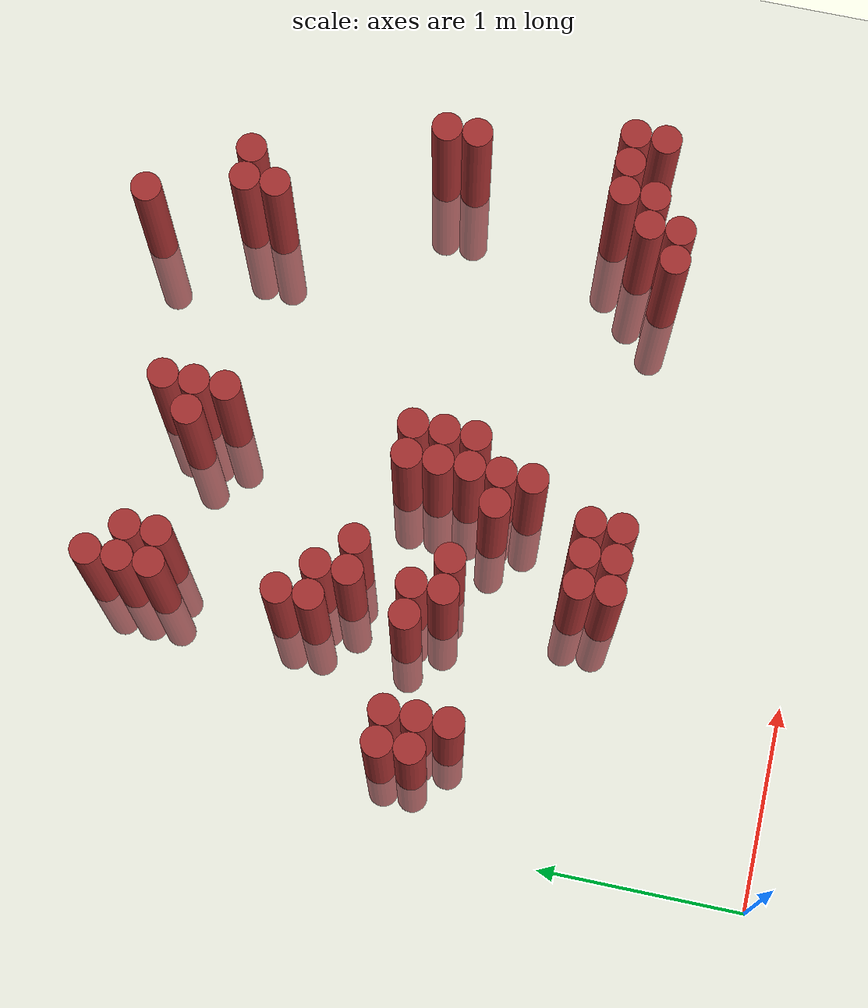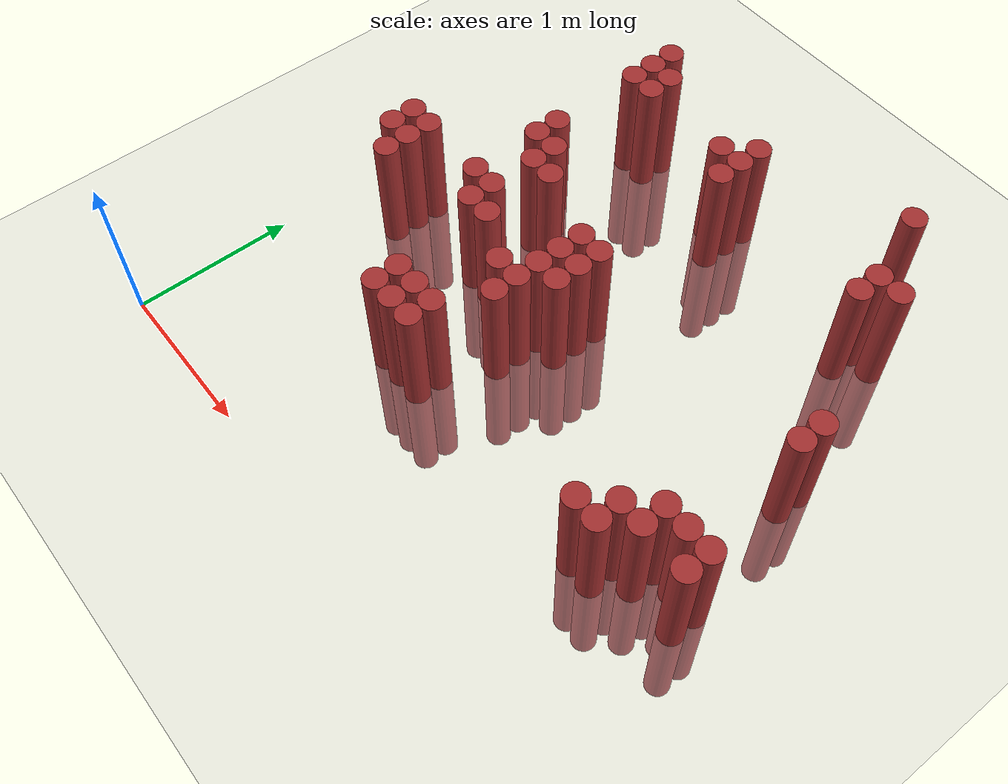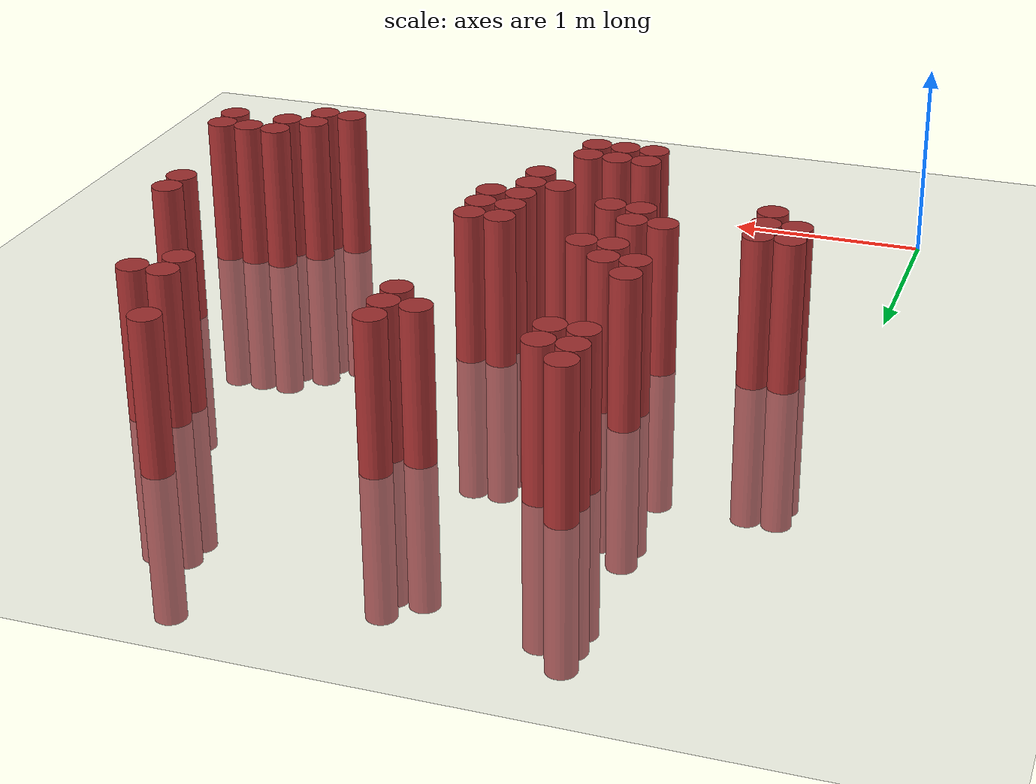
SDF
<sdf version="1.6">
 <world name="default">
  <model name="ground_plane">
   <static>1</static>
   <link name="link">
    <collision name="collision">
     <geometry><plane><normal>0 0 1</normal><size>100 100</size></plane></geometry>
     <surface><friction><ode><mu>100</mu><mu2>50</mu2></ode></friction></surface>
    </collision>
    <visual name="visual">
     <cast_shadows>0</cast_shadows>
     <geometry><plane><normal>0 0 1</normal><size>100 100</size></plane></geometry>
     <material>
      <script><uri>file://media/materials/scripts/gazebo.material</uri><name>Gazebo/Grey</name></script>
     </material>
    </visual>
   </link>
  </model>
  <model name="unit_cylinder_419">
   <static>1</static>
   <pose>0.325000 1.675000 0.000000 0.000000 0.000000 0.000000</pose>
   <link name="link">
    <inertial>
     <mass>1</mass>
     <inertia><ixx>0.145833</ixx><ixy>0</ixy><ixz>0</ixz><iyy>0.145833</iyy><iyz>0</iyz><izz>0.125</izz></inertia>
    </inertial>
    <collision name="collision">
     <geometry><cylinder><radius>0.075000</radius><length>1.5</length></cylinder></geometry>
    </collision>
    <visual name="visual">
     <geometry><cylinder><radius>0.075000</radius><length>1.5</length></cylinder></geometry>
     <material>
      <ambient>0.648000 0.192000 0.192000 1</ambient>
      <diffuse>0.648000 0.192000 0.192000 1</diffuse>
     </material>
     <material>
      <script><name>Gazebo/Grey</name><uri>file://media/materials/scripts/gazebo.material</uri></script>
     </material>
    </visual>
   </link>
  </model>
  <model name="unit_cylinder_420">
   <static>1</static>
   <pose>0.325000 1.825000 0.000000 0.000000 0.000000 0.000000</pose>
   <link name="link">
    <inertial>
     <mass>1</mass>
     <inertia><ixx>0.145833</ixx><ixy>0</ixy><ixz>0</ixz><iyy>0.145833</iyy><iyz>0</iyz><izz>0.125</izz></inertia>
    </inertial>
    <collision name="collision">
     <geometry><cylinder><radius>0.075000</radius><length>1.5</length></cylinder></geometry>
    </collision>
    <visual name="visual">
     <geometry><cylinder><radius>0.075000</radius><length>1.5</length></cylinder></geometry>
     <material>
      <ambient>0.648000 0.192000 0.192000 1</ambient>
      <diffuse>0.648000 0.192000 0.192000 1</diffuse>
     </material>
     <material>
      <script><name>Gazebo/Grey</name><uri>file://media/materials/scripts/gazebo.material</uri></script>
     </material>
    </visual>
   </link>
  </model>
  <model name="unit_cylinder_426">
   <static>1</static>
   <pose>0.475000 1.525000 0.000000 0.000000 0.000000 0.000000</pose>
   <link name="link">
    <inertial>
     <mass>1</mass>
     <inertia><ixx>0.145833</ixx><ixy>0</ixy><ixz>0</ixz><iyy>0.145833</iyy><iyz>0</iyz><izz>0.125</izz></inertia>
    </inertial>
    <collision name="collision">
     <geometry><cylinder><radius>0.075000</radius><length>1.5</length></cylinder></geometry>
    </collision>
    <visual name="visual">
     <geometry><cylinder><radius>0.075000</radius><length>1.5</length></cylinder></geometry>
     <material>
      <ambient>0.648000 0.192000 0.192000 1</ambient>
      <diffuse>0.648000 0.192000 0.192000 1</diffuse>
     </material>
     <material>
      <script><name>Gazebo/Grey</name><uri>file://media/materials/scripts/gazebo.material</uri></script>
     </material>
    </visual>
   </link>
  </model>
  <model name="unit_cylinder_427">
   <static>1</static>
   <pose>0.475000 1.675000 0.000000 0.000000 0.000000 0.000000</pose>
   <link name="link">
    <inertial>
     <mass>1</mass>
     <inertia><ixx>0.145833</ixx><ixy>0</ixy><ixz>0</ixz><iyy>0.145833</iyy><iyz>0</iyz><izz>0.125</izz></inertia>
    </inertial>
    <collision name="collision">
     <geometry><cylinder><radius>0.075000</radius><length>1.5</length></cylinder></geometry>
    </collision>
    <visual name="visual">
     <geometry><cylinder><radius>0.075000</radius><length>1.5</length></cylinder></geometry>
     <material>
      <ambient>0.648000 0.192000 0.192000 1</ambient>
      <diffuse>0.648000 0.192000 0.192000 1</diffuse>
     </material>
     <material>
      <script><name>Gazebo/Grey</name><uri>file://media/materials/scripts/gazebo.material</uri></script>
     </material>
    </visual>
   </link>
  </model>
  <model name="unit_cylinder_428">
   <static>1</static>
   <pose>0.475000 1.825000 0.000000 0.000000 0.000000 0.000000</pose>
   <link name="link">
    <inertial>
     <mass>1</mass>
     <inertia><ixx>0.145833</ixx><ixy>0</ixy><ixz>0</ixz><iyy>0.145833</iyy><iyz>0</iyz><izz>0.125</izz></inertia>
    </inertial>
    <collision name="collision">
     <geometry><cylinder><radius>0.075000</radius><length>1.5</length></cylinder></geometry>
    </collision>
    <visual name="visual">
     <geometry><cylinder><radius>0.075000</radius><length>1.5</length></cylinder></geometry>
     <material>
      <ambient>0.648000 0.192000 0.192000 1</ambient>
      <diffuse>0.648000 0.192000 0.192000 1</diffuse>
     </material>
     <material>
      <script><name>Gazebo/Grey</name><uri>file://media/materials/scripts/gazebo.material</uri></script>
     </material>
    </visual>
   </link>
  </model>
  <model name="unit_cylinder_452">
   <static>1</static>
   <pose>0.925000 1.825000 0.000000 0.000000 0.000000 0.000000</pose>
   <link name="link">
    <inertial>
     <mass>1</mass>
     <inertia><ixx>0.145833</ixx><ixy>0</ixy><ixz>0</ixz><iyy>0.145833</iyy><iyz>0</iyz><izz>0.125</izz></inertia>
    </inertial>
    <collision name="collision">
     <geometry><cylinder><radius>0.075000</radius><length>1.5</length></cylinder></geometry>
    </collision>
    <visual name="visual">
     <geometry><cylinder><radius>0.075000</radius><length>1.5</length></cylinder></geometry>
     <material>
      <ambient>0.648000 0.192000 0.192000 1</ambient>
      <diffuse>0.648000 0.192000 0.192000 1</diffuse>
     </material>
     <material>
      <script><name>Gazebo/Grey</name><uri>file://media/materials/scripts/gazebo.material</uri></script>
     </material>
    </visual>
   </link>
  </model>
  <model name="unit_cylinder_453">
   <static>1</static>
   <pose>0.925000 2.275000 0.000000 0.000000 0.000000 0.000000</pose>
   <link name="link">
    <inertial>
     <mass>1</mass>
     <inertia><ixx>0.145833</ixx><ixy>0</ixy><ixz>0</ixz><iyy>0.145833</iyy><iyz>0</iyz><izz>0.125</izz></inertia>
    </inertial>
    <collision name="collision">
     <geometry><cylinder><radius>0.075000</radius><length>1.5</length></cylinder></geometry>
    </collision>
    <visual name="visual">
     <geometry><cylinder><radius>0.075000</radius><length>1.5</length></cylinder></geometry>
     <material>
      <ambient>0.648000 0.192000 0.192000 1</ambient>
      <diffuse>0.648000 0.192000 0.192000 1</diffuse>
     </material>
     <material>
      <script><name>Gazebo/Grey</name><uri>file://media/materials/scripts/gazebo.material</uri></script>
     </material>
    </visual>
   </link>
  </model>
  <model name="unit_cylinder_454">
   <static>1</static>
   <pose>0.925000 2.425000 0.000000 0.000000 0.000000 0.000000</pose>
   <link name="link">
    <inertial>
     <mass>1</mass>
     <inertia><ixx>0.145833</ixx><ixy>0</ixy><ixz>0</ixz><iyy>0.145833</iyy><iyz>0</iyz><izz>0.125</izz></inertia>
    </inertial>
    <collision name="collision">
     <geometry><cylinder><radius>0.075000</radius><length>1.5</length></cylinder></geometry>
    </collision>
    <visual name="visual">
     <geometry><cylinder><radius>0.075000</radius><length>1.5</length></cylinder></geometry>
     <material>
      <ambient>0.648000 0.192000 0.192000 1</ambient>
      <diffuse>0.648000 0.192000 0.192000 1</diffuse>
     </material>
     <material>
      <script><name>Gazebo/Grey</name><uri>file://media/materials/scripts/gazebo.material</uri></script>
     </material>
    </visual>
   </link>
  </model>
  <model name="unit_cylinder_455">
   <static>1</static>
   <pose>0.925000 3.025000 0.000000 0.000000 0.000000 0.000000</pose>
   <link name="link">
    <inertial>
     <mass>1</mass>
     <inertia><ixx>0.145833</ixx><ixy>0</ixy><ixz>0</ixz><iyy>0.145833</iyy><iyz>0</iyz><izz>0.125</izz></inertia>
    </inertial>
    <collision name="collision">
     <geometry><cylinder><radius>0.075000</radius><length>1.5</length></cylinder></geometry>
    </collision>
    <visual name="visual">
     <geometry><cylinder><radius>0.075000</radius><length>1.5</length></cylinder></geometry>
     <material>
      <ambient>0.648000 0.192000 0.192000 1</ambient>
      <diffuse>0.648000 0.192000 0.192000 1</diffuse>
     </material>
     <material>
      <script><name>Gazebo/Grey</name><uri>file://media/materials/scripts/gazebo.material</uri></script>
     </material>
    </visual>
   </link>
  </model>
  <model name="unit_cylinder_456">
   <static>1</static>
   <pose>0.925000 3.175000 0.000000 0.000000 0.000000 0.000000</pose>
   <link name="link">
    <inertial>
     <mass>1</mass>
     <inertia><ixx>0.145833</ixx><ixy>0</ixy><ixz>0</ixz><iyy>0.145833</iyy><iyz>0</iyz><izz>0.125</izz></inertia>
    </inertial>
    <collision name="collision">
     <geometry><cylinder><radius>0.075000</radius><length>1.5</length></cylinder></geometry>
    </collision>
    <visual name="visual">
     <geometry><cylinder><radius>0.075000</radius><length>1.5</length></cylinder></geometry>
     <material>
      <ambient>0.648000 0.192000 0.192000 1</ambient>
      <diffuse>0.648000 0.192000 0.192000 1</diffuse>
     </material>
     <material>
      <script><name>Gazebo/Grey</name><uri>file://media/materials/scripts/gazebo.material</uri></script>
     </material>
    </visual>
   </link>
  </model>
  <model name="unit_cylinder_457">
   <static>1</static>
   <pose>0.925000 3.325000 0.000000 0.000000 0.000000 0.000000</pose>
   <link name="link">
    <inertial>
     <mass>1</mass>
     <inertia><ixx>0.145833</ixx><ixy>0</ixy><ixz>0</ixz><iyy>0.145833</iyy><iyz>0</iyz><izz>0.125</izz></inertia>
    </inertial>
    <collision name="collision">
     <geometry><cylinder><radius>0.075000</radius><length>1.5</length></cylinder></geometry>
    </collision>
    <visual name="visual">
     <geometry><cylinder><radius>0.075000</radius><length>1.5</length></cylinder></geometry>
     <material>
      <ambient>0.648000 0.192000 0.192000 1</ambient>
      <diffuse>0.648000 0.192000 0.192000 1</diffuse>
     </material>
     <material>
      <script><name>Gazebo/Grey</name><uri>file://media/materials/scripts/gazebo.material</uri></script>
     </material>
    </visual>
   </link>
  </model>
  <model name="unit_cylinder_465">
   <static>1</static>
   <pose>1.075000 1.675000 0.000000 0.000000 0.000000 0.000000</pose>
   <link name="link">
    <inertial>
     <mass>1</mass>
     <inertia><ixx>0.145833</ixx><ixy>0</ixy><ixz>0</ixz><iyy>0.145833</iyy><iyz>0</iyz><izz>0.125</izz></inertia>
    </inertial>
    <collision name="collision">
     <geometry><cylinder><radius>0.075000</radius><length>1.5</length></cylinder></geometry>
    </collision>
    <visual name="visual">
     <geometry><cylinder><radius>0.075000</radius><length>1.5</length></cylinder></geometry>
     <material>
      <ambient>0.648000 0.192000 0.192000 1</ambient>
      <diffuse>0.648000 0.192000 0.192000 1</diffuse>
     </material>
     <material>
      <script><name>Gazebo/Grey</name><uri>file://media/materials/scripts/gazebo.material</uri></script>
     </material>
    </visual>
   </link>
  </model>
  <model name="unit_cylinder_466">
   <static>1</static>
   <pose>1.075000 1.825000 0.000000 0.000000 0.000000 0.000000</pose>
   <link name="link">
    <inertial>
     <mass>1</mass>
     <inertia><ixx>0.145833</ixx><ixy>0</ixy><ixz>0</ixz><iyy>0.145833</iyy><iyz>0</iyz><izz>0.125</izz></inertia>
    </inertial>
    <collision name="collision">
     <geometry><cylinder><radius>0.075000</radius><length>1.5</length></cylinder></geometry>
    </collision>
    <visual name="visual">
     <geometry><cylinder><radius>0.075000</radius><length>1.5</length></cylinder></geometry>
     <material>
      <ambient>0.648000 0.192000 0.192000 1</ambient>
      <diffuse>0.648000 0.192000 0.192000 1</diffuse>
     </material>
     <material>
      <script><name>Gazebo/Grey</name><uri>file://media/materials/scripts/gazebo.material</uri></script>
     </material>
    </visual>
   </link>
  </model>
  <model name="unit_cylinder_467">
   <static>1</static>
   <pose>1.075000 2.125000 0.000000 0.000000 0.000000 0.000000</pose>
   <link name="link">
    <inertial>
     <mass>1</mass>
     <inertia><ixx>0.145833</ixx><ixy>0</ixy><ixz>0</ixz><iyy>0.145833</iyy><iyz>0</iyz><izz>0.125</izz></inertia>
    </inertial>
    <collision name="collision">
     <geometry><cylinder><radius>0.075000</radius><length>1.5</length></cylinder></geometry>
    </collision>
    <visual name="visual">
     <geometry><cylinder><radius>0.075000</radius><length>1.5</length></cylinder></geometry>
     <material>
      <ambient>0.648000 0.192000 0.192000 1</ambient>
      <diffuse>0.648000 0.192000 0.192000 1</diffuse>
     </material>
     <material>
      <script><name>Gazebo/Grey</name><uri>file://media/materials/scripts/gazebo.material</uri></script>
     </material>
    </visual>
   </link>
  </model>
  <model name="unit_cylinder_468">
   <static>1</static>
   <pose>1.075000 2.275000 0.000000 0.000000 0.000000 0.000000</pose>
   <link name="link">
    <inertial>
     <mass>1</mass>
     <inertia><ixx>0.145833</ixx><ixy>0</ixy><ixz>0</ixz><iyy>0.145833</iyy><iyz>0</iyz><izz>0.125</izz></inertia>
    </inertial>
    <collision name="collision">
     <geometry><cylinder><radius>0.075000</radius><length>1.5</length></cylinder></geometry>
    </collision>
    <visual name="visual">
     <geometry><cylinder><radius>0.075000</radius><length>1.5</length></cylinder></geometry>
     <material>
      <ambient>0.648000 0.192000 0.192000 1</ambient>
      <diffuse>0.648000 0.192000 0.192000 1</diffuse>
     </material>
     <material>
      <script><name>Gazebo/Grey</name><uri>file://media/materials/scripts/gazebo.material</uri></script>
     </material>
    </visual>
   </link>
  </model>
  <model name="unit_cylinder_469">
   <static>1</static>
   <pose>1.075000 3.025000 0.000000 0.000000 0.000000 0.000000</pose>
   <link name="link">
    <inertial>
     <mass>1</mass>
     <inertia><ixx>0.145833</ixx><ixy>0</ixy><ixz>0</ixz><iyy>0.145833</iyy><iyz>0</iyz><izz>0.125</izz></inertia>
    </inertial>
    <collision name="collision">
     <geometry><cylinder><radius>0.075000</radius><length>1.5</length></cylinder></geometry>
    </collision>
    <visual name="visual">
     <geometry><cylinder><radius>0.075000</radius><length>1.5</length></cylinder></geometry>
     <material>
      <ambient>0.648000 0.192000 0.192000 1</ambient>
      <diffuse>0.648000 0.192000 0.192000 1</diffuse>
     </material>
     <material>
      <script><name>Gazebo/Grey</name><uri>file://media/materials/scripts/gazebo.material</uri></script>
     </material>
    </visual>
   </link>
  </model>
  <model name="unit_cylinder_470">
   <static>1</static>
   <pose>1.075000 3.175000 0.000000 0.000000 0.000000 0.000000</pose>
   <link name="link">
    <inertial>
     <mass>1</mass>
     <inertia><ixx>0.145833</ixx><ixy>0</ixy><ixz>0</ixz><iyy>0.145833</iyy><iyz>0</iyz><izz>0.125</izz></inertia>
    </inertial>
    <collision name="collision">
     <geometry><cylinder><radius>0.075000</radius><length>1.5</length></cylinder></geometry>
    </collision>
    <visual name="visual">
     <geometry><cylinder><radius>0.075000</radius><length>1.5</length></cylinder></geometry>
     <material>
      <ambient>0.648000 0.192000 0.192000 1</ambient>
      <diffuse>0.648000 0.192000 0.192000 1</diffuse>
     </material>
     <material>
      <script><name>Gazebo/Grey</name><uri>file://media/materials/scripts/gazebo.material</uri></script>
     </material>
    </visual>
   </link>
  </model>
  <model name="unit_cylinder_472">
   <static>1</static>
   <pose>1.225000 0.925000 0.000000 0.000000 0.000000 0.000000</pose>
   <link name="link">
    <inertial>
     <mass>1</mass>
     <inertia><ixx>0.145833</ixx><ixy>0</ixy><ixz>0</ixz><iyy>0.145833</iyy><iyz>0</iyz><izz>0.125</izz></inertia>
    </inertial>
    <collision name="collision">
     <geometry><cylinder><radius>0.075000</radius><length>1.5</length></cylinder></geometry>
    </collision>
    <visual name="visual">
     <geometry><cylinder><radius>0.075000</radius><length>1.5</length></cylinder></geometry>
     <material>
      <ambient>0.648000 0.192000 0.192000 1</ambient>
      <diffuse>0.648000 0.192000 0.192000 1</diffuse>
     </material>
     <material>
      <script><name>Gazebo/Grey</name><uri>file://media/materials/scripts/gazebo.material</uri></script>
     </material>
    </visual>
   </link>
  </model>
  <model name="unit_cylinder_473">
   <static>1</static>
   <pose>1.225000 1.075000 0.000000 0.000000 0.000000 0.000000</pose>
   <link name="link">
    <inertial>
     <mass>1</mass>
     <inertia><ixx>0.145833</ixx><ixy>0</ixy><ixz>0</ixz><iyy>0.145833</iyy><iyz>0</iyz><izz>0.125</izz></inertia>
    </inertial>
    <collision name="collision">
     <geometry><cylinder><radius>0.075000</radius><length>1.5</length></cylinder></geometry>
    </collision>
    <visual name="visual">
     <geometry><cylinder><radius>0.075000</radius><length>1.5</length></cylinder></geometry>
     <material>
      <ambient>0.648000 0.192000 0.192000 1</ambient>
      <diffuse>0.648000 0.192000 0.192000 1</diffuse>
     </material>
     <material>
      <script><name>Gazebo/Grey</name><uri>file://media/materials/scripts/gazebo.material</uri></script>
     </material>
    </visual>
   </link>
  </model>
  <model name="unit_cylinder_474">
   <static>1</static>
   <pose>1.225000 1.675000 0.000000 0.000000 0.000000 0.000000</pose>
   <link name="link">
    <inertial>
     <mass>1</mass>
     <inertia><ixx>0.145833</ixx><ixy>0</ixy><ixz>0</ixz><iyy>0.145833</iyy><iyz>0</iyz><izz>0.125</izz></inertia>
    </inertial>
    <collision name="collision">
     <geometry><cylinder><radius>0.075000</radius><length>1.5</length></cylinder></geometry>
    </collision>
    <visual name="visual">
     <geometry><cylinder><radius>0.075000</radius><length>1.5</length></cylinder></geometry>
     <material>
      <ambient>0.648000 0.192000 0.192000 1</ambient>
      <diffuse>0.648000 0.192000 0.192000 1</diffuse>
     </material>
     <material>
      <script><name>Gazebo/Grey</name><uri>file://media/materials/scripts/gazebo.material</uri></script>
     </material>
    </visual>
   </link>
  </model>
  <model name="unit_cylinder_475">
   <static>1</static>
   <pose>1.225000 2.125000 0.000000 0.000000 0.000000 0.000000</pose>
   <link name="link">
    <inertial>
     <mass>1</mass>
     <inertia><ixx>0.145833</ixx><ixy>0</ixy><ixz>0</ixz><iyy>0.145833</iyy><iyz>0</iyz><izz>0.125</izz></inertia>
    </inertial>
    <collision name="collision">
     <geometry><cylinder><radius>0.075000</radius><length>1.5</length></cylinder></geometry>
    </collision>
    <visual name="visual">
     <geometry><cylinder><radius>0.075000</radius><length>1.5</length></cylinder></geometry>
     <material>
      <ambient>0.648000 0.192000 0.192000 1</ambient>
      <diffuse>0.648000 0.192000 0.192000 1</diffuse>
     </material>
     <material>
      <script><name>Gazebo/Grey</name><uri>file://media/materials/scripts/gazebo.material</uri></script>
     </material>
    </visual>
   </link>
  </model>
  <model name="unit_cylinder_478">
   <static>1</static>
   <pose>1.375000 0.925000 0.000000 0.000000 0.000000 0.000000</pose>
   <link name="link">
    <inertial>
     <mass>1</mass>
     <inertia><ixx>0.145833</ixx><ixy>0</ixy><ixz>0</ixz><iyy>0.145833</iyy><iyz>0</iyz><izz>0.125</izz></inertia>
    </inertial>
    <collision name="collision">
     <geometry><cylinder><radius>0.075000</radius><length>1.5</length></cylinder></geometry>
    </collision>
    <visual name="visual">
     <geometry><cylinder><radius>0.075000</radius><length>1.5</length></cylinder></geometry>
     <material>
      <ambient>0.648000 0.192000 0.192000 1</ambient>
      <diffuse>0.648000 0.192000 0.192000 1</diffuse>
     </material>
     <material>
      <script><name>Gazebo/Grey</name><uri>file://media/materials/scripts/gazebo.material</uri></script>
     </material>
    </visual>
   </link>
  </model>
  <model name="unit_cylinder_479">
   <static>1</static>
   <pose>1.375000 1.075000 0.000000 0.000000 0.000000 0.000000</pose>
   <link name="link">
    <inertial>
     <mass>1</mass>
     <inertia><ixx>0.145833</ixx><ixy>0</ixy><ixz>0</ixz><iyy>0.145833</iyy><iyz>0</iyz><izz>0.125</izz></inertia>
    </inertial>
    <collision name="collision">
     <geometry><cylinder><radius>0.075000</radius><length>1.5</length></cylinder></geometry>
    </collision>
    <visual name="visual">
     <geometry><cylinder><radius>0.075000</radius><length>1.5</length></cylinder></geometry>
     <material>
      <ambient>0.648000 0.192000 0.192000 1</ambient>
      <diffuse>0.648000 0.192000 0.192000 1</diffuse>
     </material>
     <material>
      <script><name>Gazebo/Grey</name><uri>file://media/materials/scripts/gazebo.material</uri></script>
     </material>
    </visual>
   </link>
  </model>
  <model name="unit_cylinder_485">
   <static>1</static>
   <pose>1.525000 0.925000 0.000000 0.000000 0.000000 0.000000</pose>
   <link name="link">
    <inertial>
     <mass>1</mass>
     <inertia><ixx>0.145833</ixx><ixy>0</ixy><ixz>0</ixz><iyy>0.145833</iyy><iyz>0</iyz><izz>0.125</izz></inertia>
    </inertial>
    <collision name="collision">
     <geometry><cylinder><radius>0.075000</radius><length>1.5</length></cylinder></geometry>
    </collision>
    <visual name="visual">
     <geometry><cylinder><radius>0.075000</radius><length>1.5</length></cylinder></geometry>
     <material>
      <ambient>0.648000 0.192000 0.192000 1</ambient>
      <diffuse>0.648000 0.192000 0.192000 1</diffuse>
     </material>
     <material>
      <script><name>Gazebo/Grey</name><uri>file://media/materials/scripts/gazebo.material</uri></script>
     </material>
    </visual>
   </link>
  </model>
  <model name="unit_cylinder_486">
   <static>1</static>
   <pose>1.525000 1.075000 0.000000 0.000000 0.000000 0.000000</pose>
   <link name="link">
    <inertial>
     <mass>1</mass>
     <inertia><ixx>0.145833</ixx><ixy>0</ixy><ixz>0</ixz><iyy>0.145833</iyy><iyz>0</iyz><izz>0.125</izz></inertia>
    </inertial>
    <collision name="collision">
     <geometry><cylinder><radius>0.075000</radius><length>1.5</length></cylinder></geometry>
    </collision>
    <visual name="visual">
     <geometry><cylinder><radius>0.075000</radius><length>1.5</length></cylinder></geometry>
     <material>
      <ambient>0.648000 0.192000 0.192000 1</ambient>
      <diffuse>0.648000 0.192000 0.192000 1</diffuse>
     </material>
     <material>
      <script><name>Gazebo/Grey</name><uri>file://media/materials/scripts/gazebo.material</uri></script>
     </material>
    </visual>
   </link>
  </model>
  <model name="unit_cylinder_487">
   <static>1</static>
   <pose>1.525000 1.525000 0.000000 0.000000 0.000000 0.000000</pose>
   <link name="link">
    <inertial>
     <mass>1</mass>
     <inertia><ixx>0.145833</ixx><ixy>0</ixy><ixz>0</ixz><iyy>0.145833</iyy><iyz>0</iyz><izz>0.125</izz></inertia>
    </inertial>
    <collision name="collision">
     <geometry><cylinder><radius>0.075000</radius><length>1.5</length></cylinder></geometry>
    </collision>
    <visual name="visual">
     <geometry><cylinder><radius>0.075000</radius><length>1.5</length></cylinder></geometry>
     <material>
      <ambient>0.648000 0.192000 0.192000 1</ambient>
      <diffuse>0.648000 0.192000 0.192000 1</diffuse>
     </material>
     <material>
      <script><name>Gazebo/Grey</name><uri>file://media/materials/scripts/gazebo.material</uri></script>
     </material>
    </visual>
   </link>
  </model>
  <model name="unit_cylinder_491">
   <static>1</static>
   <pose>1.675000 1.375000 0.000000 0.000000 0.000000 0.000000</pose>
   <link name="link">
    <inertial>
     <mass>1</mass>
     <inertia><ixx>0.145833</ixx><ixy>0</ixy><ixz>0</ixz><iyy>0.145833</iyy><iyz>0</iyz><izz>0.125</izz></inertia>
    </inertial>
    <collision name="collision">
     <geometry><cylinder><radius>0.075000</radius><length>1.5</length></cylinder></geometry>
    </collision>
    <visual name="visual">
     <geometry><cylinder><radius>0.075000</radius><length>1.5</length></cylinder></geometry>
     <material>
      <ambient>0.648000 0.192000 0.192000 1</ambient>
      <diffuse>0.648000 0.192000 0.192000 1</diffuse>
     </material>
     <material>
      <script><name>Gazebo/Grey</name><uri>file://media/materials/scripts/gazebo.material</uri></script>
     </material>
    </visual>
   </link>
  </model>
  <model name="unit_cylinder_492">
   <static>1</static>
   <pose>1.675000 1.525000 0.000000 0.000000 0.000000 0.000000</pose>
   <link name="link">
    <inertial>
     <mass>1</mass>
     <inertia><ixx>0.145833</ixx><ixy>0</ixy><ixz>0</ixz><iyy>0.145833</iyy><iyz>0</iyz><izz>0.125</izz></inertia>
    </inertial>
    <collision name="collision">
     <geometry><cylinder><radius>0.075000</radius><length>1.5</length></cylinder></geometry>
    </collision>
    <visual name="visual">
     <geometry><cylinder><radius>0.075000</radius><length>1.5</length></cylinder></geometry>
     <material>
      <ambient>0.648000 0.192000 0.192000 1</ambient>
      <diffuse>0.648000 0.192000 0.192000 1</diffuse>
     </material>
     <material>
      <script><name>Gazebo/Grey</name><uri>file://media/materials/scripts/gazebo.material</uri></script>
     </material>
    </visual>
   </link>
  </model>
  <model name="unit_cylinder_493">
   <static>1</static>
   <pose>1.675000 1.675000 0.000000 0.000000 0.000000 0.000000</pose>
   <link name="link">
    <inertial>
     <mass>1</mass>
     <inertia><ixx>0.145833</ixx><ixy>0</ixy><ixz>0</ixz><iyy>0.145833</iyy><iyz>0</iyz><izz>0.125</izz></inertia>
    </inertial>
    <collision name="collision">
     <geometry><cylinder><radius>0.075000</radius><length>1.5</length></cylinder></geometry>
    </collision>
    <visual name="visual">
     <geometry><cylinder><radius>0.075000</radius><length>1.5</length></cylinder></geometry>
     <material>
      <ambient>0.648000 0.192000 0.192000 1</ambient>
      <diffuse>0.648000 0.192000 0.192000 1</diffuse>
     </material>
     <material>
      <script><name>Gazebo/Grey</name><uri>file://media/materials/scripts/gazebo.material</uri></script>
     </material>
    </visual>
   </link>
  </model>
  <model name="unit_cylinder_494">
   <static>1</static>
   <pose>1.675000 1.825000 0.000000 0.000000 0.000000 0.000000</pose>
   <link name="link">
    <inertial>
     <mass>1</mass>
     <inertia><ixx>0.145833</ixx><ixy>0</ixy><ixz>0</ixz><iyy>0.145833</iyy><iyz>0</iyz><izz>0.125</izz></inertia>
    </inertial>
    <collision name="collision">
     <geometry><cylinder><radius>0.075000</radius><length>1.5</length></cylinder></geometry>
    </collision>
    <visual name="visual">
     <geometry><cylinder><radius>0.075000</radius><length>1.5</length></cylinder></geometry>
     <material>
      <ambient>0.648000 0.192000 0.192000 1</ambient>
      <diffuse>0.648000 0.192000 0.192000 1</diffuse>
     </material>
     <material>
      <script><name>Gazebo/Grey</name><uri>file://media/materials/scripts/gazebo.material</uri></script>
     </material>
    </visual>
   </link>
  </model>
  <model name="unit_cylinder_495">
   <static>1</static>
   <pose>1.675000 1.975000 0.000000 0.000000 0.000000 0.000000</pose>
   <link name="link">
    <inertial>
     <mass>1</mass>
     <inertia><ixx>0.145833</ixx><ixy>0</ixy><ixz>0</ixz><iyy>0.145833</iyy><iyz>0</iyz><izz>0.125</izz></inertia>
    </inertial>
    <collision name="collision">
     <geometry><cylinder><radius>0.075000</radius><length>1.5</length></cylinder></geometry>
    </collision>
    <visual name="visual">
     <geometry><cylinder><radius>0.075000</radius><length>1.5</length></cylinder></geometry>
     <material>
      <ambient>0.648000 0.192000 0.192000 1</ambient>
      <diffuse>0.648000 0.192000 0.192000 1</diffuse>
     </material>
     <material>
      <script><name>Gazebo/Grey</name><uri>file://media/materials/scripts/gazebo.material</uri></script>
     </material>
    </visual>
   </link>
  </model>
  <model name="unit_cylinder_496">
   <static>1</static>
   <pose>1.675000 3.025000 0.000000 0.000000 0.000000 0.000000</pose>
   <link name="link">
    <inertial>
     <mass>1</mass>
     <inertia><ixx>0.145833</ixx><ixy>0</ixy><ixz>0</ixz><iyy>0.145833</iyy><iyz>0</iyz><izz>0.125</izz></inertia>
    </inertial>
    <collision name="collision">
     <geometry><cylinder><radius>0.075000</radius><length>1.5</length></cylinder></geometry>
    </collision>
    <visual name="visual">
     <geometry><cylinder><radius>0.075000</radius><length>1.5</length></cylinder></geometry>
     <material>
      <ambient>0.648000 0.192000 0.192000 1</ambient>
      <diffuse>0.648000 0.192000 0.192000 1</diffuse>
     </material>
     <material>
      <script><name>Gazebo/Grey</name><uri>file://media/materials/scripts/gazebo.material</uri></script>
     </material>
    </visual>
   </link>
  </model>
  <model name="unit_cylinder_499">
   <static>1</static>
   <pose>1.825000 1.675000 0.000000 0.000000 0.000000 0.000000</pose>
   <link name="link">
    <inertial>
     <mass>1</mass>
     <inertia><ixx>0.145833</ixx><ixy>0</ixy><ixz>0</ixz><iyy>0.145833</iyy><iyz>0</iyz><izz>0.125</izz></inertia>
    </inertial>
    <collision name="collision">
     <geometry><cylinder><radius>0.075000</radius><length>1.5</length></cylinder></geometry>
    </collision>
    <visual name="visual">
     <geometry><cylinder><radius>0.075000</radius><length>1.5</length></cylinder></geometry>
     <material>
      <ambient>0.648000 0.192000 0.192000 1</ambient>
      <diffuse>0.648000 0.192000 0.192000 1</diffuse>
     </material>
     <material>
      <script><name>Gazebo/Grey</name><uri>file://media/materials/scripts/gazebo.material</uri></script>
     </material>
    </visual>
   </link>
  </model>
  <model name="unit_cylinder_500">
   <static>1</static>
   <pose>1.825000 1.825000 0.000000 0.000000 0.000000 0.000000</pose>
   <link name="link">
    <inertial>
     <mass>1</mass>
     <inertia><ixx>0.145833</ixx><ixy>0</ixy><ixz>0</ixz><iyy>0.145833</iyy><iyz>0</iyz><izz>0.125</izz></inertia>
    </inertial>
    <collision name="collision">
     <geometry><cylinder><radius>0.075000</radius><length>1.5</length></cylinder></geometry>
    </collision>
    <visual name="visual">
     <geometry><cylinder><radius>0.075000</radius><length>1.5</length></cylinder></geometry>
     <material>
      <ambient>0.648000 0.192000 0.192000 1</ambient>
      <diffuse>0.648000 0.192000 0.192000 1</diffuse>
     </material>
     <material>
      <script><name>Gazebo/Grey</name><uri>file://media/materials/scripts/gazebo.material</uri></script>
     </material>
    </visual>
   </link>
  </model>
  <model name="unit_cylinder_501">
   <static>1</static>
   <pose>1.825000 1.975000 0.000000 0.000000 0.000000 0.000000</pose>
   <link name="link">
    <inertial>
     <mass>1</mass>
     <inertia><ixx>0.145833</ixx><ixy>0</ixy><ixz>0</ixz><iyy>0.145833</iyy><iyz>0</iyz><izz>0.125</izz></inertia>
    </inertial>
    <collision name="collision">
     <geometry><cylinder><radius>0.075000</radius><length>1.5</length></cylinder></geometry>
    </collision>
    <visual name="visual">
     <geometry><cylinder><radius>0.075000</radius><length>1.5</length></cylinder></geometry>
     <material>
      <ambient>0.648000 0.192000 0.192000 1</ambient>
      <diffuse>0.648000 0.192000 0.192000 1</diffuse>
     </material>
     <material>
      <script><name>Gazebo/Grey</name><uri>file://media/materials/scripts/gazebo.material</uri></script>
     </material>
    </visual>
   </link>
  </model>
  <model name="unit_cylinder_502">
   <static>1</static>
   <pose>1.825000 2.875000 0.000000 0.000000 0.000000 0.000000</pose>
   <link name="link">
    <inertial>
     <mass>1</mass>
     <inertia><ixx>0.145833</ixx><ixy>0</ixy><ixz>0</ixz><iyy>0.145833</iyy><iyz>0</iyz><izz>0.125</izz></inertia>
    </inertial>
    <collision name="collision">
     <geometry><cylinder><radius>0.075000</radius><length>1.5</length></cylinder></geometry>
    </collision>
    <visual name="visual">
     <geometry><cylinder><radius>0.075000</radius><length>1.5</length></cylinder></geometry>
     <material>
      <ambient>0.648000 0.192000 0.192000 1</ambient>
      <diffuse>0.648000 0.192000 0.192000 1</diffuse>
     </material>
     <material>
      <script><name>Gazebo/Grey</name><uri>file://media/materials/scripts/gazebo.material</uri></script>
     </material>
    </visual>
   </link>
  </model>
  <model name="unit_cylinder_503">
   <static>1</static>
   <pose>1.825000 3.025000 0.000000 0.000000 0.000000 0.000000</pose>
   <link name="link">
    <inertial>
     <mass>1</mass>
     <inertia><ixx>0.145833</ixx><ixy>0</ixy><ixz>0</ixz><iyy>0.145833</iyy><iyz>0</iyz><izz>0.125</izz></inertia>
    </inertial>
    <collision name="collision">
     <geometry><cylinder><radius>0.075000</radius><length>1.5</length></cylinder></geometry>
    </collision>
    <visual name="visual">
     <geometry><cylinder><radius>0.075000</radius><length>1.5</length></cylinder></geometry>
     <material>
      <ambient>0.648000 0.192000 0.192000 1</ambient>
      <diffuse>0.648000 0.192000 0.192000 1</diffuse>
     </material>
     <material>
      <script><name>Gazebo/Grey</name><uri>file://media/materials/scripts/gazebo.material</uri></script>
     </material>
    </visual>
   </link>
  </model>
  <model name="unit_cylinder_504">
   <static>1</static>
   <pose>1.825000 3.175000 0.000000 0.000000 0.000000 0.000000</pose>
   <link name="link">
    <inertial>
     <mass>1</mass>
     <inertia><ixx>0.145833</ixx><ixy>0</ixy><ixz>0</ixz><iyy>0.145833</iyy><iyz>0</iyz><izz>0.125</izz></inertia>
    </inertial>
    <collision name="collision">
     <geometry><cylinder><radius>0.075000</radius><length>1.5</length></cylinder></geometry>
    </collision>
    <visual name="visual">
     <geometry><cylinder><radius>0.075000</radius><length>1.5</length></cylinder></geometry>
     <material>
      <ambient>0.648000 0.192000 0.192000 1</ambient>
      <diffuse>0.648000 0.192000 0.192000 1</diffuse>
     </material>
     <material>
      <script><name>Gazebo/Grey</name><uri>file://media/materials/scripts/gazebo.material</uri></script>
     </material>
    </visual>
   </link>
  </model>
  <model name="unit_cylinder_531">
   <static>1</static>
   <pose>2.725000 3.475000 0.000000 0.000000 0.000000 0.000000</pose>
   <link name="link">
    <inertial>
     <mass>1</mass>
     <inertia><ixx>0.145833</ixx><ixy>0</ixy><ixz>0</ixz><iyy>0.145833</iyy><iyz>0</iyz><izz>0.125</izz></inertia>
    </inertial>
    <collision name="collision">
     <geometry><cylinder><radius>0.075000</radius><length>1.5</length></cylinder></geometry>
    </collision>
    <visual name="visual">
     <geometry><cylinder><radius>0.075000</radius><length>1.5</length></cylinder></geometry>
     <material>
      <ambient>0.648000 0.192000 0.192000 1</ambient>
      <diffuse>0.648000 0.192000 0.192000 1</diffuse>
     </material>
     <material>
      <script><name>Gazebo/Grey</name><uri>file://media/materials/scripts/gazebo.material</uri></script>
     </material>
    </visual>
   </link>
  </model>
  <model name="unit_cylinder_541">
   <static>1</static>
   <pose>2.875000 0.925000 0.000000 0.000000 0.000000 0.000000</pose>
   <link name="link">
    <inertial>
     <mass>1</mass>
     <inertia><ixx>0.145833</ixx><ixy>0</ixy><ixz>0</ixz><iyy>0.145833</iyy><iyz>0</iyz><izz>0.125</izz></inertia>
    </inertial>
    <collision name="collision">
     <geometry><cylinder><radius>0.075000</radius><length>1.5</length></cylinder></geometry>
    </collision>
    <visual name="visual">
     <geometry><cylinder><radius>0.075000</radius><length>1.5</length></cylinder></geometry>
     <material>
      <ambient>0.648000 0.192000 0.192000 1</ambient>
      <diffuse>0.648000 0.192000 0.192000 1</diffuse>
     </material>
     <material>
      <script><name>Gazebo/Grey</name><uri>file://media/materials/scripts/gazebo.material</uri></script>
     </material>
    </visual>
   </link>
  </model>
  <model name="unit_cylinder_542">
   <static>1</static>
   <pose>2.875000 2.875000 0.000000 0.000000 0.000000 0.000000</pose>
   <link name="link">
    <inertial>
     <mass>1</mass>
     <inertia><ixx>0.145833</ixx><ixy>0</ixy><ixz>0</ixz><iyy>0.145833</iyy><iyz>0</iyz><izz>0.125</izz></inertia>
    </inertial>
    <collision name="collision">
     <geometry><cylinder><radius>0.075000</radius><length>1.5</length></cylinder></geometry>
    </collision>
    <visual name="visual">
     <geometry><cylinder><radius>0.075000</radius><length>1.5</length></cylinder></geometry>
     <material>
      <ambient>0.648000 0.192000 0.192000 1</ambient>
      <diffuse>0.648000 0.192000 0.192000 1</diffuse>
     </material>
     <material>
      <script><name>Gazebo/Grey</name><uri>file://media/materials/scripts/gazebo.material</uri></script>
     </material>
    </visual>
   </link>
  </model>
  <model name="unit_cylinder_543">
   <static>1</static>
   <pose>2.875000 3.025000 0.000000 0.000000 0.000000 0.000000</pose>
   <link name="link">
    <inertial>
     <mass>1</mass>
     <inertia><ixx>0.145833</ixx><ixy>0</ixy><ixz>0</ixz><iyy>0.145833</iyy><iyz>0</iyz><izz>0.125</izz></inertia>
    </inertial>
    <collision name="collision">
     <geometry><cylinder><radius>0.075000</radius><length>1.5</length></cylinder></geometry>
    </collision>
    <visual name="visual">
     <geometry><cylinder><radius>0.075000</radius><length>1.5</length></cylinder></geometry>
     <material>
      <ambient>0.648000 0.192000 0.192000 1</ambient>
      <diffuse>0.648000 0.192000 0.192000 1</diffuse>
     </material>
     <material>
      <script><name>Gazebo/Grey</name><uri>file://media/materials/scripts/gazebo.material</uri></script>
     </material>
    </visual>
   </link>
  </model>
  <model name="unit_cylinder_555">
   <static>1</static>
   <pose>3.025000 0.925000 0.000000 0.000000 0.000000 0.000000</pose>
   <link name="link">
    <inertial>
     <mass>1</mass>
     <inertia><ixx>0.145833</ixx><ixy>0</ixy><ixz>0</ixz><iyy>0.145833</iyy><iyz>0</iyz><izz>0.125</izz></inertia>
    </inertial>
    <collision name="collision">
     <geometry><cylinder><radius>0.075000</radius><length>1.5</length></cylinder></geometry>
    </collision>
    <visual name="visual">
     <geometry><cylinder><radius>0.075000</radius><length>1.5</length></cylinder></geometry>
     <material>
      <ambient>0.648000 0.192000 0.192000 1</ambient>
      <diffuse>0.648000 0.192000 0.192000 1</diffuse>
     </material>
     <material>
      <script><name>Gazebo/Grey</name><uri>file://media/materials/scripts/gazebo.material</uri></script>
     </material>
    </visual>
   </link>
  </model>
  <model name="unit_cylinder_556">
   <static>1</static>
   <pose>3.025000 1.075000 0.000000 0.000000 0.000000 0.000000</pose>
   <link name="link">
    <inertial>
     <mass>1</mass>
     <inertia><ixx>0.145833</ixx><ixy>0</ixy><ixz>0</ixz><iyy>0.145833</iyy><iyz>0</iyz><izz>0.125</izz></inertia>
    </inertial>
    <collision name="collision">
     <geometry><cylinder><radius>0.075000</radius><length>1.5</length></cylinder></geometry>
    </collision>
    <visual name="visual">
     <geometry><cylinder><radius>0.075000</radius><length>1.5</length></cylinder></geometry>
     <material>
      <ambient>0.648000 0.192000 0.192000 1</ambient>
      <diffuse>0.648000 0.192000 0.192000 1</diffuse>
     </material>
     <material>
      <script><name>Gazebo/Grey</name><uri>file://media/materials/scripts/gazebo.material</uri></script>
     </material>
    </visual>
   </link>
  </model>
  <model name="unit_cylinder_557">
   <static>1</static>
   <pose>3.025000 3.025000 0.000000 0.000000 0.000000 0.000000</pose>
   <link name="link">
    <inertial>
     <mass>1</mass>
     <inertia><ixx>0.145833</ixx><ixy>0</ixy><ixz>0</ixz><iyy>0.145833</iyy><iyz>0</iyz><izz>0.125</izz></inertia>
    </inertial>
    <collision name="collision">
     <geometry><cylinder><radius>0.075000</radius><length>1.5</length></cylinder></geometry>
    </collision>
    <visual name="visual">
     <geometry><cylinder><radius>0.075000</radius><length>1.5</length></cylinder></geometry>
     <material>
      <ambient>0.648000 0.192000 0.192000 1</ambient>
      <diffuse>0.648000 0.192000 0.192000 1</diffuse>
     </material>
     <material>
      <script><name>Gazebo/Grey</name><uri>file://media/materials/scripts/gazebo.material</uri></script>
     </material>
    </visual>
   </link>
  </model>
  <model name="unit_cylinder_567">
   <static>1</static>
   <pose>3.175000 1.075000 0.000000 0.000000 0.000000 0.000000</pose>
   <link name="link">
    <inertial>
     <mass>1</mass>
     <inertia><ixx>0.145833</ixx><ixy>0</ixy><ixz>0</ixz><iyy>0.145833</iyy><iyz>0</iyz><izz>0.125</izz></inertia>
    </inertial>
    <collision name="collision">
     <geometry><cylinder><radius>0.075000</radius><length>1.5</length></cylinder></geometry>
    </collision>
    <visual name="visual">
     <geometry><cylinder><radius>0.075000</radius><length>1.5</length></cylinder></geometry>
     <material>
      <ambient>0.648000 0.192000 0.192000 1</ambient>
      <diffuse>0.648000 0.192000 0.192000 1</diffuse>
     </material>
     <material>
      <script><name>Gazebo/Grey</name><uri>file://media/materials/scripts/gazebo.material</uri></script>
     </material>
    </visual>
   </link>
  </model>
  <model name="unit_cylinder_568">
   <static>1</static>
   <pose>3.175000 1.225000 0.000000 0.000000 0.000000 0.000000</pose>
   <link name="link">
    <inertial>
     <mass>1</mass>
     <inertia><ixx>0.145833</ixx><ixy>0</ixy><ixz>0</ixz><iyy>0.145833</iyy><iyz>0</iyz><izz>0.125</izz></inertia>
    </inertial>
    <collision name="collision">
     <geometry><cylinder><radius>0.075000</radius><length>1.5</length></cylinder></geometry>
    </collision>
    <visual name="visual">
     <geometry><cylinder><radius>0.075000</radius><length>1.5</length></cylinder></geometry>
     <material>
      <ambient>0.648000 0.192000 0.192000 1</ambient>
      <diffuse>0.648000 0.192000 0.192000 1</diffuse>
     </material>
     <material>
      <script><name>Gazebo/Grey</name><uri>file://media/materials/scripts/gazebo.material</uri></script>
     </material>
    </visual>
   </link>
  </model>
  <model name="unit_cylinder_576">
   <static>1</static>
   <pose>3.325000 1.225000 0.000000 0.000000 0.000000 0.000000</pose>
   <link name="link">
    <inertial>
     <mass>1</mass>
     <inertia><ixx>0.145833</ixx><ixy>0</ixy><ixz>0</ixz><iyy>0.145833</iyy><iyz>0</iyz><izz>0.125</izz></inertia>
    </inertial>
    <collision name="collision">
     <geometry><cylinder><radius>0.075000</radius><length>1.5</length></cylinder></geometry>
    </collision>
    <visual name="visual">
     <geometry><cylinder><radius>0.075000</radius><length>1.5</length></cylinder></geometry>
     <material>
      <ambient>0.648000 0.192000 0.192000 1</ambient>
      <diffuse>0.648000 0.192000 0.192000 1</diffuse>
     </material>
     <material>
      <script><name>Gazebo/Grey</name><uri>file://media/materials/scripts/gazebo.material</uri></script>
     </material>
    </visual>
   </link>
  </model>
  <model name="unit_cylinder_577">
   <static>1</static>
   <pose>3.325000 1.975000 0.000000 0.000000 0.000000 0.000000</pose>
   <link name="link">
    <inertial>
     <mass>1</mass>
     <inertia><ixx>0.145833</ixx><ixy>0</ixy><ixz>0</ixz><iyy>0.145833</iyy><iyz>0</iyz><izz>0.125</izz></inertia>
    </inertial>
    <collision name="collision">
     <geometry><cylinder><radius>0.075000</radius><length>1.5</length></cylinder></geometry>
    </collision>
    <visual name="visual">
     <geometry><cylinder><radius>0.075000</radius><length>1.5</length></cylinder></geometry>
     <material>
      <ambient>0.648000 0.192000 0.192000 1</ambient>
      <diffuse>0.648000 0.192000 0.192000 1</diffuse>
     </material>
     <material>
      <script><name>Gazebo/Grey</name><uri>file://media/materials/scripts/gazebo.material</uri></script>
     </material>
    </visual>
   </link>
  </model>
  <model name="unit_cylinder_578">
   <static>1</static>
   <pose>3.325000 2.125000 0.000000 0.000000 0.000000 0.000000</pose>
   <link name="link">
    <inertial>
     <mass>1</mass>
     <inertia><ixx>0.145833</ixx><ixy>0</ixy><ixz>0</ixz><iyy>0.145833</iyy><iyz>0</iyz><izz>0.125</izz></inertia>
    </inertial>
    <collision name="collision">
     <geometry><cylinder><radius>0.075000</radius><length>1.5</length></cylinder></geometry>
    </collision>
    <visual name="visual">
     <geometry><cylinder><radius>0.075000</radius><length>1.5</length></cylinder></geometry>
     <material>
      <ambient>0.648000 0.192000 0.192000 1</ambient>
      <diffuse>0.648000 0.192000 0.192000 1</diffuse>
     </material>
     <material>
      <script><name>Gazebo/Grey</name><uri>file://media/materials/scripts/gazebo.material</uri></script>
     </material>
    </visual>
   </link>
  </model>
  <model name="unit_cylinder_587">
   <static>1</static>
   <pose>3.475000 1.075000 0.000000 0.000000 0.000000 0.000000</pose>
   <link name="link">
    <inertial>
     <mass>1</mass>
     <inertia><ixx>0.145833</ixx><ixy>0</ixy><ixz>0</ixz><iyy>0.145833</iyy><iyz>0</iyz><izz>0.125</izz></inertia>
    </inertial>
    <collision name="collision">
     <geometry><cylinder><radius>0.075000</radius><length>1.5</length></cylinder></geometry>
    </collision>
    <visual name="visual">
     <geometry><cylinder><radius>0.075000</radius><length>1.5</length></cylinder></geometry>
     <material>
      <ambient>0.648000 0.192000 0.192000 1</ambient>
      <diffuse>0.648000 0.192000 0.192000 1</diffuse>
     </material>
     <material>
      <script><name>Gazebo/Grey</name><uri>file://media/materials/scripts/gazebo.material</uri></script>
     </material>
    </visual>
   </link>
  </model>
  <model name="unit_cylinder_588">
   <static>1</static>
   <pose>3.475000 1.225000 0.000000 0.000000 0.000000 0.000000</pose>
   <link name="link">
    <inertial>
     <mass>1</mass>
     <inertia><ixx>0.145833</ixx><ixy>0</ixy><ixz>0</ixz><iyy>0.145833</iyy><iyz>0</iyz><izz>0.125</izz></inertia>
    </inertial>
    <collision name="collision">
     <geometry><cylinder><radius>0.075000</radius><length>1.5</length></cylinder></geometry>
    </collision>
    <visual name="visual">
     <geometry><cylinder><radius>0.075000</radius><length>1.5</length></cylinder></geometry>
     <material>
      <ambient>0.648000 0.192000 0.192000 1</ambient>
      <diffuse>0.648000 0.192000 0.192000 1</diffuse>
     </material>
     <material>
      <script><name>Gazebo/Grey</name><uri>file://media/materials/scripts/gazebo.material</uri></script>
     </material>
    </visual>
   </link>
  </model>
 </world>
</sdf>
